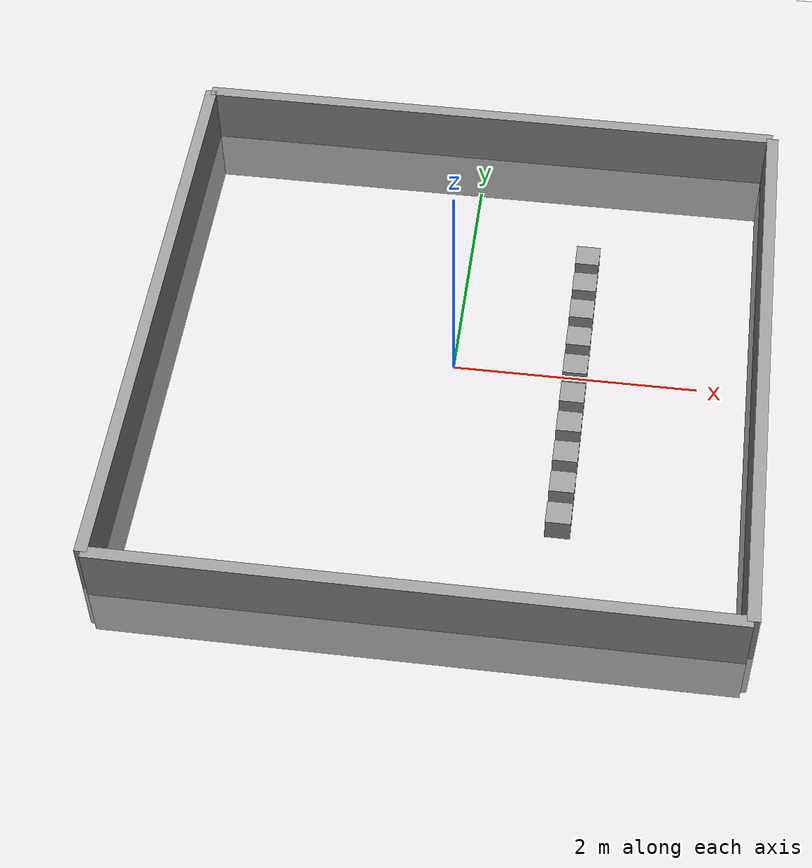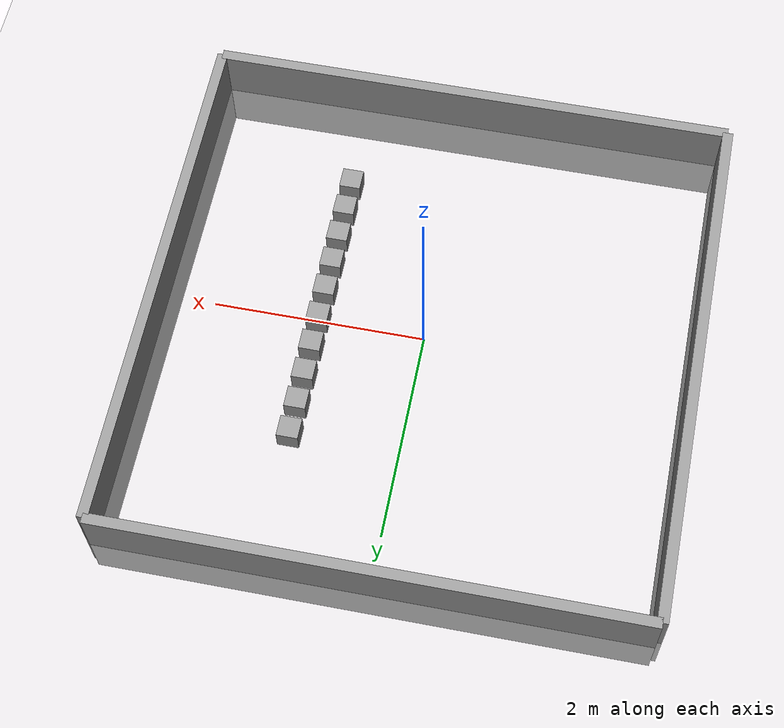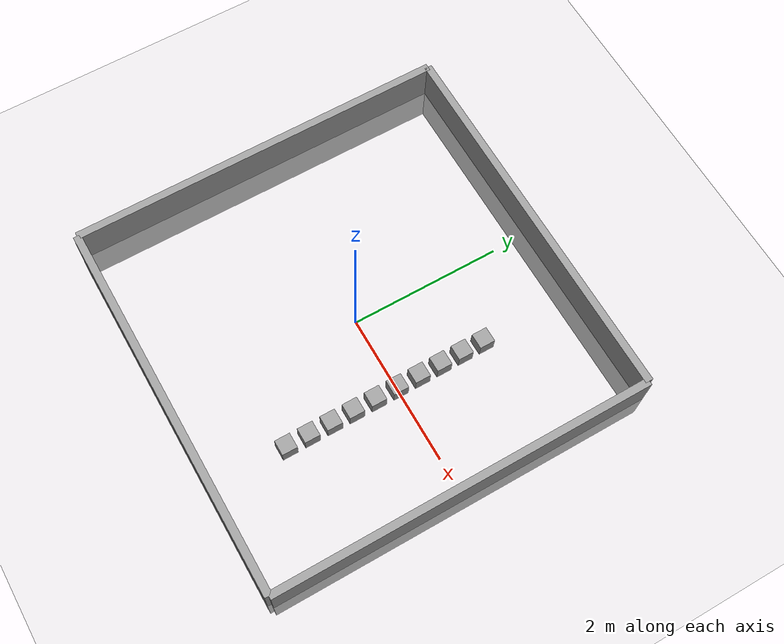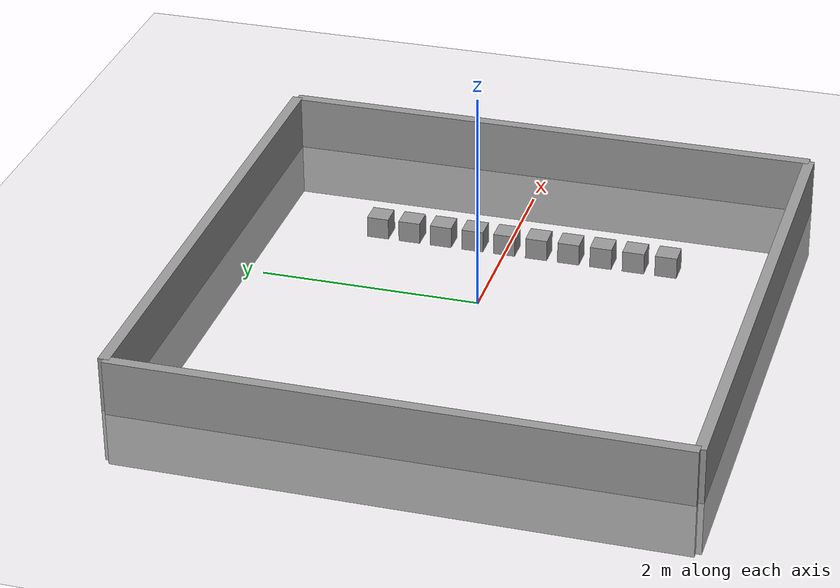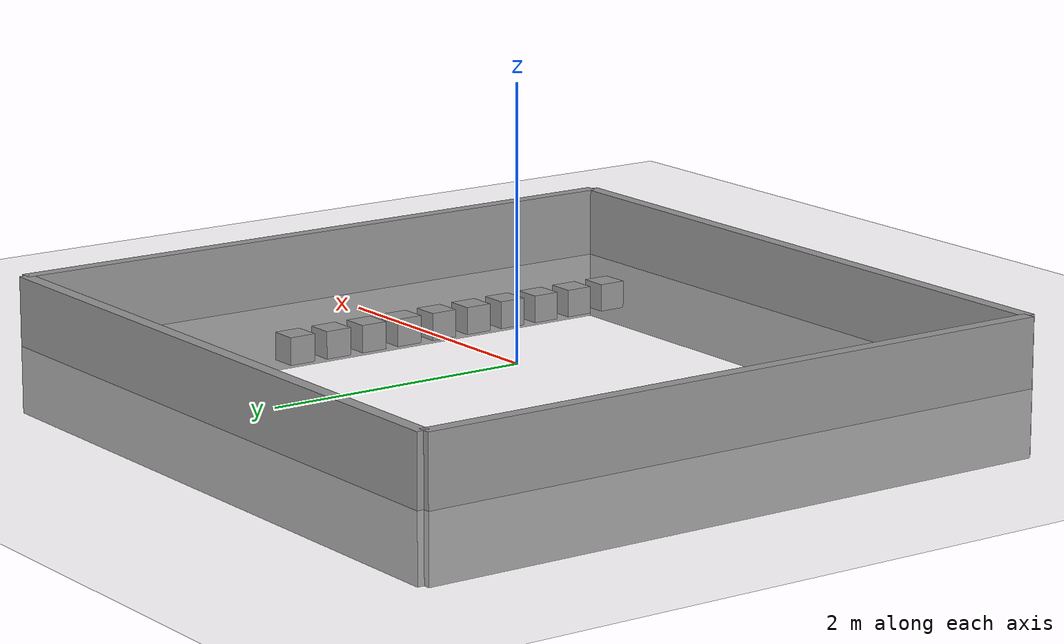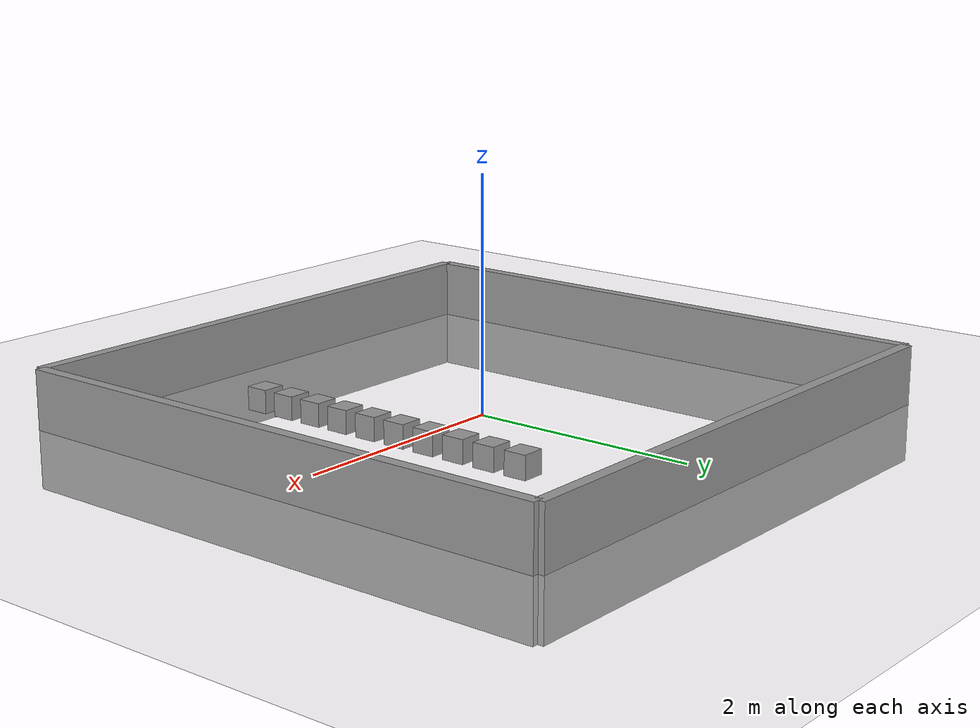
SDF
<sdf version="1.7">
 <world name="default">
  <plugin name="gazebo_ros_state" filename="libgazebo_ros_state.so">
   <ros>
    <namespace>/plug</namespace>
    <argument>model_states:=model_states_plug</argument>
    <argument>link_states:=link_states_plug</argument>
   </ros>
   <update_rate>1.0</update_rate>
  </plugin>
  <light name="sun" type="directional">
   <pose>0 0 10 0 -0 0</pose>
   <diffuse>0.8 0.8 0.8 1</diffuse>
   <specular>0.2 0.2 0.2 1</specular>
   <attenuation>
    <range>1000</range>
    <constant>0.9</constant>
    <linear>0.01</linear>
    <quadratic>0.001</quadratic>
   </attenuation>
   <direction>-0.5 0.1 -0.9</direction>
   <spot><inner_angle>0</inner_angle><outer_angle>0</outer_angle><falloff>0</falloff></spot>
  </light>
  <model name="ground_plane">
   <static>1</static>
   <link name="link">
    <collision name="collision">
     <geometry><plane><normal>0 0 1</normal><size>100 100</size></plane></geometry>
    </collision>
    <visual name="visual">
     <geometry><plane><normal>0 0 1</normal><size>100 100</size></plane></geometry>
     <material>
      <script><uri>file://media/materials/scripts/gazebo.material</uri><name>Gazebo/Grey</name></script>
     </material>
    </visual>
   </link>
  </model>
  <model name="wall_0_north">
   <static>1</static>
   <pose>0 2.5 0 0 -0 0</pose>
   <link name="link">
    <collision name="collision"><geometry><box><size>5 0.1 1</size></box></geometry></collision>
    <visual name="visual">
     <geometry><box><size>5 0.1 1</size></box></geometry>
     <material>
      <script><uri>file://media/materials/scripts/gazebo.material</uri><name>Gazebo/Grey</name></script>
     </material>
    </visual>
   </link>
  </model>
  <model name="wall_0_south">
   <static>1</static>
   <pose>0 -2.5 0 0 -0 0</pose>
   <link name="link">
    <collision name="collision"><geometry><box><size>5 0.1 1</size></box></geometry></collision>
    <visual name="visual">
     <geometry><box><size>5 0.1 1</size></box></geometry>
     <material>
      <script><uri>file://media/materials/scripts/gazebo.material</uri><name>Gazebo/Grey</name></script>
     </material>
    </visual>
   </link>
  </model>
  <model name="wall_0_east">
   <static>1</static>
   <pose>2.5 0 0 0 -0 1.5707</pose>
   <link name="link">
    <collision name="collision"><geometry><box><size>5 0.1 1</size></box></geometry></collision>
    <visual name="visual">
     <geometry><box><size>5 0.1 1</size></box></geometry>
     <material>
      <script><uri>file://media/materials/scripts/gazebo.material</uri><name>Gazebo/Grey</name></script>
     </material>
    </visual>
   </link>
  </model>
  <model name="wall_0_west">
   <static>1</static>
   <pose>-2.5 0 0 0 -0 1.5707</pose>
   <link name="link">
    <collision name="collision"><geometry><box><size>5 0.1 1</size></box></geometry></collision>
    <visual name="visual">
     <geometry><box><size>5 0.1 1</size></box></geometry>
     <material>
      <script><uri>file://media/materials/scripts/gazebo.material</uri><name>Gazebo/Grey</name></script>
     </material>
    </visual>
   </link>
  </model>
  <gravity>0 0 -9.8</gravity>
  <magnetic_field>6e-06 2.3e-05 -4.2e-05</magnetic_field>
  <atmosphere type="adiabatic"/>
  <physics type="ode">
   <max_step_size>0.001</max_step_size>
   <real_time_factor>1</real_time_factor>
   <real_time_update_rate>1000</real_time_update_rate>
  </physics>
  <scene><ambient>0.4 0.4 0.4 1</ambient><background>0.7 0.7 0.7 1</background><shadows>1</shadows></scene>
  <spherical_coordinates>
   <surface_model>EARTH_WGS84</surface_model>
   <latitude_deg>0</latitude_deg>
   <longitude_deg>0</longitude_deg>
   <elevation>0</elevation>
   <heading_deg>0</heading_deg>
  </spherical_coordinates>
  <model name="box0_robot1">
   <static>0</static>
   <link name="link">
    <collision name="collision"><geometry><box><size>0.2 0.2 0.2</size></box></geometry></collision>
    <visual name="visual">
     <geometry><box><size>0.2 0.2 0.2</size></box></geometry>
     <material>
      <ambient>0.5 0.5 0.5 1</ambient>
      <diffuse>0.6 0.6 0.6 1</diffuse>
      <specular>0.1 0.1 0.1 1</specular>
     </material>
    </visual>
    <inertial>
     <inertia><ixx>1</ixx><ixy>0</ixy><ixz>0</ixz><iyy>1</iyy><iyz>0</iyz><izz>1</izz></inertia>
     <mass>1</mass>
    </inertial>
   </link>
   <pose>1 -1.5 0.100002 -9e-06 6e-06 -9e-06</pose>
  </model>
  <model name="box1_robot1">
   <static>0</static>
   <link name="link">
    <collision name="collision"><geometry><box><size>0.2 0.2 0.2</size></box></geometry></collision>
    <visual name="visual">
     <geometry><box><size>0.2 0.2 0.2</size></box></geometry>
     <material>
      <ambient>0.5 0.5 0.5 1</ambient>
      <diffuse>0.6 0.6 0.6 1</diffuse>
      <specular>0.1 0.1 0.1 1</specular>
     </material>
    </visual>
    <inertial>
     <inertia><ixx>1</ixx><ixy>0</ixy><ixz>0</ixz><iyy>1</iyy><iyz>0</iyz><izz>1</izz></inertia>
     <mass>1</mass>
    </inertial>
   </link>
   <pose>0.999999 -1.2 0.100001 5e-06 -8e-06 -7e-06</pose>
  </model>
  <model name="box2_robot1">
   <static>0</static>
   <link name="link">
    <collision name="collision"><geometry><box><size>0.2 0.2 0.2</size></box></geometry></collision>
    <visual name="visual">
     <geometry><box><size>0.2 0.2 0.2</size></box></geometry>
     <material>
      <ambient>0.5 0.5 0.5 1</ambient>
      <diffuse>0.6 0.6 0.6 1</diffuse>
      <specular>0.1 0.1 0.1 1</specular>
     </material>
    </visual>
    <inertial>
     <inertia><ixx>1</ixx><ixy>0</ixy><ixz>0</ixz><iyy>1</iyy><iyz>0</iyz><izz>1</izz></inertia>
     <mass>1</mass>
    </inertial>
   </link>
   <pose>1.00001 -0.9 0.100011 2e-06 0.000115 -7e-06</pose>
  </model>
  <model name="box3_robot1">
   <static>0</static>
   <link name="link">
    <collision name="collision"><geometry><box><size>0.2 0.2 0.2</size></box></geometry></collision>
    <visual name="visual">
     <geometry><box><size>0.2 0.2 0.2</size></box></geometry>
     <material>
      <ambient>0.5 0.5 0.5 1</ambient>
      <diffuse>0.6 0.6 0.6 1</diffuse>
      <specular>0.1 0.1 0.1 1</specular>
     </material>
    </visual>
    <inertial>
     <inertia><ixx>1</ixx><ixy>0</ixy><ixz>0</ixz><iyy>1</iyy><iyz>0</iyz><izz>1</izz></inertia>
     <mass>1</mass>
    </inertial>
   </link>
   <pose>0.999997 -0.6 0.100003 -2e-06 -3.2e-05 -6e-06</pose>
  </model>
  <model name="box4_robot1">
   <static>0</static>
   <link name="link">
    <collision name="collision"><geometry><box><size>0.2 0.2 0.2</size></box></geometry></collision>
    <visual name="visual">
     <geometry><box><size>0.2 0.2 0.2</size></box></geometry>
     <material>
      <ambient>0.5 0.5 0.5 1</ambient>
      <diffuse>0.6 0.6 0.6 1</diffuse>
      <specular>0.1 0.1 0.1 1</specular>
     </material>
    </visual>
    <inertial>
     <inertia><ixx>1</ixx><ixy>0</ixy><ixz>0</ixz><iyy>1</iyy><iyz>0</iyz><izz>1</izz></inertia>
     <mass>1</mass>
    </inertial>
   </link>
   <pose>1.00001 -0.300002 0.100012 2.4e-05 9.7e-05 -6e-06</pose>
  </model>
  <model name="box5_robot1">
   <static>0</static>
   <link name="link">
    <collision name="collision"><geometry><box><size>0.2 0.2 0.2</size></box></geometry></collision>
    <visual name="visual">
     <geometry><box><size>0.2 0.2 0.2</size></box></geometry>
     <material>
      <ambient>0.5 0.5 0.5 1</ambient>
      <diffuse>0.6 0.6 0.6 1</diffuse>
      <specular>0.1 0.1 0.1 1</specular>
     </material>
    </visual>
    <inertial>
     <inertia><ixx>1</ixx><ixy>0</ixy><ixz>0</ixz><iyy>1</iyy><iyz>0</iyz><izz>1</izz></inertia>
     <mass>1</mass>
    </inertial>
   </link>
   <pose>1.00002 -0 0.100016 2e-06 0.000167 -1.1e-05</pose>
  </model>
  <model name="box6_robot1">
   <static>0</static>
   <link name="link">
    <collision name="collision"><geometry><box><size>0.2 0.2 0.2</size></box></geometry></collision>
    <visual name="visual">
     <geometry><box><size>0.2 0.2 0.2</size></box></geometry>
     <material>
      <ambient>0.5 0.5 0.5 1</ambient>
      <diffuse>0.6 0.6 0.6 1</diffuse>
      <specular>0.1 0.1 0.1 1</specular>
     </material>
    </visual>
    <inertial>
     <inertia><ixx>1</ixx><ixy>0</ixy><ixz>0</ixz><iyy>1</iyy><iyz>0</iyz><izz>1</izz></inertia>
     <mass>1</mass>
    </inertial>
   </link>
   <pose>1.00003 0.3 0.100028 -2e-06 0.000276 -6e-06</pose>
  </model>
  <model name="box7_robot1">
   <static>0</static>
   <link name="link">
    <collision name="collision"><geometry><box><size>0.2 0.2 0.2</size></box></geometry></collision>
    <visual name="visual">
     <geometry><box><size>0.2 0.2 0.2</size></box></geometry>
     <material>
      <ambient>0.5 0.5 0.5 1</ambient>
      <diffuse>0.6 0.6 0.6 1</diffuse>
      <specular>0.1 0.1 0.1 1</specular>
     </material>
    </visual>
    <inertial>
     <inertia><ixx>1</ixx><ixy>0</ixy><ixz>0</ixz><iyy>1</iyy><iyz>0</iyz><izz>1</izz></inertia>
     <mass>1</mass>
    </inertial>
   </link>
   <pose>0.999986 0.6 0.100014 -1e-06 -0.000142 -6e-06</pose>
  </model>
  <model name="box8_robot1">
   <static>0</static>
   <link name="link">
    <collision name="collision"><geometry><box><size>0.2 0.2 0.2</size></box></geometry></collision>
    <visual name="visual">
     <geometry><box><size>0.2 0.2 0.2</size></box></geometry>
     <material>
      <ambient>0.5 0.5 0.5 1</ambient>
      <diffuse>0.6 0.6 0.6 1</diffuse>
      <specular>0.1 0.1 0.1 1</specular>
     </material>
    </visual>
    <inertial>
     <inertia><ixx>1</ixx><ixy>0</ixy><ixz>0</ixz><iyy>1</iyy><iyz>0</iyz><izz>1</izz></inertia>
     <mass>1</mass>
    </inertial>
   </link>
   <pose>1 0.9 0.099999 4e-06 1.2e-05 -6e-06</pose>
  </model>
  <model name="box9_robot1">
   <static>0</static>
   <link name="link">
    <collision name="collision"><geometry><box><size>0.2 0.2 0.2</size></box></geometry></collision>
    <visual name="visual">
     <geometry><box><size>0.2 0.2 0.2</size></box></geometry>
     <material>
      <ambient>0.5 0.5 0.5 1</ambient>
      <diffuse>0.6 0.6 0.6 1</diffuse>
      <specular>0.1 0.1 0.1 1</specular>
     </material>
    </visual>
    <inertial>
     <inertia><ixx>1</ixx><ixy>0</ixy><ixz>0</ixz><iyy>1</iyy><iyz>0</iyz><izz>1</izz></inertia>
     <mass>1</mass>
    </inertial>
   </link>
   <pose>1.00001 1.2 0.100009 1e-06 9e-05 -6e-06</pose>
  </model>
 </world>
</sdf>
